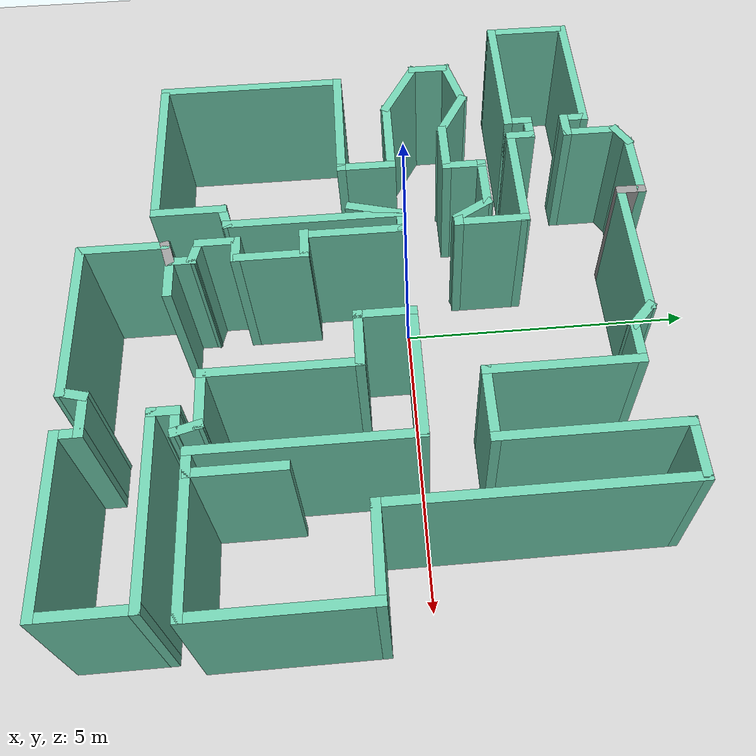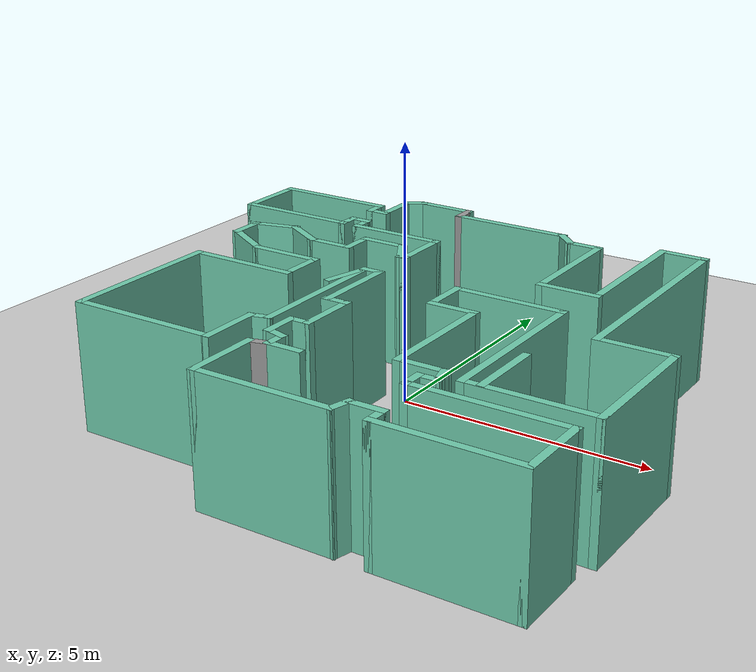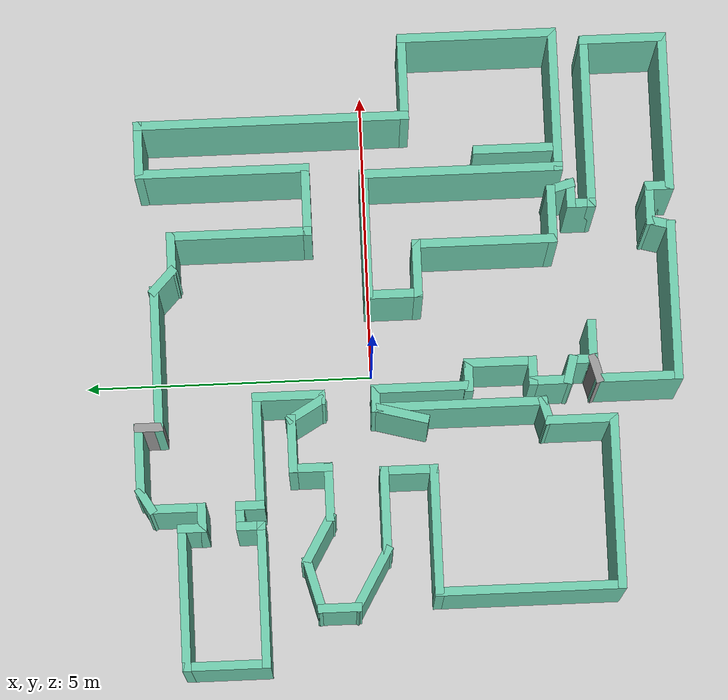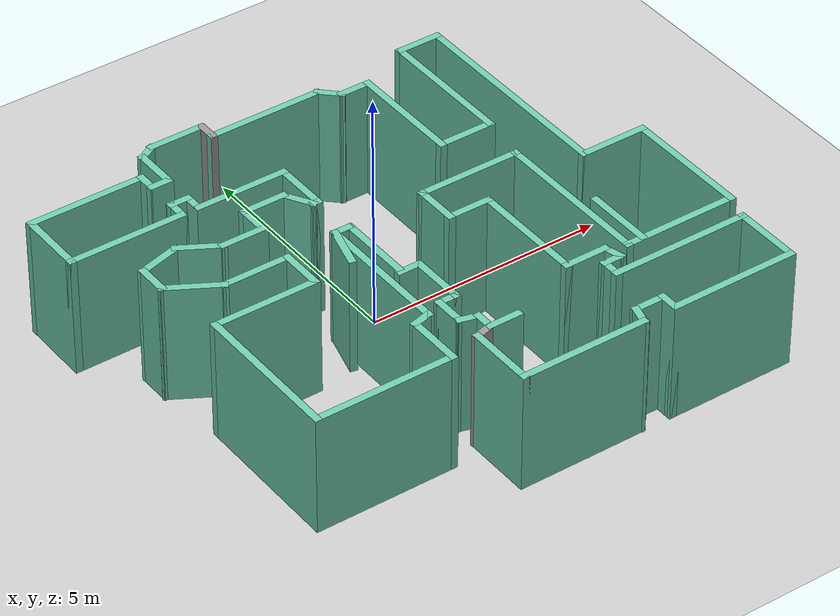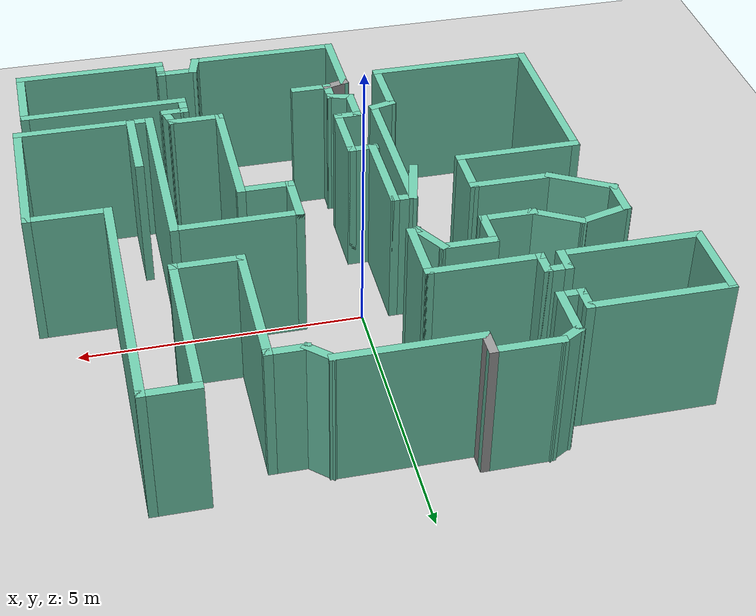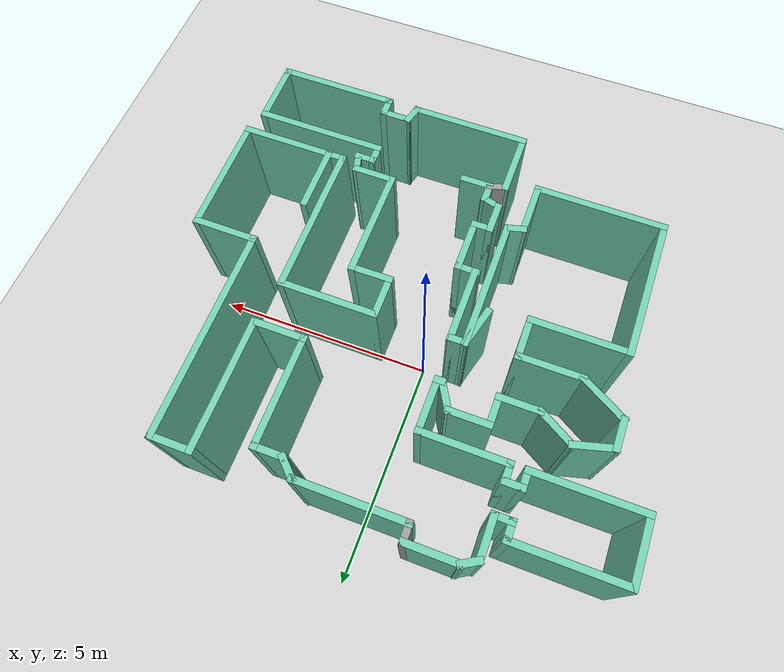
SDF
<sdf version="1.6">
 <world name="default">
  <model name="ground_plane">
   <static>1</static>
   <link name="link">
    <collision name="collision">
     <geometry><plane><normal>0 0 1</normal><size>100 100</size></plane></geometry>
     <surface>
      <contact><collide_bitmask>65535</collide_bitmask></contact>
      <friction><ode><mu>100</mu><mu2>50</mu2></ode></friction>
     </surface>
    </collision>
    <visual name="visual">
     <cast_shadows>0</cast_shadows>
     <geometry><plane><normal>0 0 1</normal><size>100 100</size></plane></geometry>
     <material>
      <script><uri>file://media/materials/scripts/gazebo.material</uri><name>Gazebo/Grey</name></script>
     </material>
    </visual>
   </link>
  </model>
  <model name="map_52">
   <pose>0.195887 -0.58659 0 0 -0 0</pose>
   <link name="Wall_0">
    <collision name="Wall_0_Collision">
     <geometry><box><size>2.5 0.15 2.5</size></box></geometry>
     <pose>0 0 1.25 0 -0 0</pose>
    </collision>
    <visual name="Wall_0_Visual">
     <pose>0 0 1.25 0 -0 0</pose>
     <geometry><box><size>2.5 0.15 2.5</size></box></geometry>
     <material>
      <script><uri>file://media/materials/scripts/gazebo.material</uri><name>Gazebo/Grey</name></script>
      <ambient>0.435294 0.796078 0.67451 1</ambient>
     </material>
     <meta><layer>0</layer></meta>
    </visual>
    <pose>-0.063663 4.26519 0 0 -0 3.14159</pose>
   </link>
   <link name="Wall_1">
    <collision name="Wall_1_Collision">
     <geometry><box><size>0.5 0.15 2.5</size></box></geometry>
     <pose>0 0 1.25 0 -0 0</pose>
    </collision>
    <visual name="Wall_1_Visual">
     <pose>0 0 1.25 0 -0 0</pose>
     <geometry><box><size>0.5 0.15 2.5</size></box></geometry>
     <material>
      <script><uri>file://media/materials/scripts/gazebo.material</uri><name>Gazebo/Grey</name></script>
      <ambient>1 1 1 1</ambient>
     </material>
     <meta><layer>0</layer></meta>
    </visual>
    <pose>-1.23866 4.44019 0 0 -0 1.5708</pose>
   </link>
   <link name="Wall_10">
    <collision name="Wall_10_Collision">
     <geometry><box><size>1.5 0.15 2.5</size></box></geometry>
     <pose>0 0 1.25 0 -0 0</pose>
    </collision>
    <visual name="Wall_10_Visual">
     <pose>0 0 1.25 0 -0 0</pose>
     <geometry><box><size>1.5 0.15 2.5</size></box></geometry>
     <material>
      <script><uri>file://media/materials/scripts/gazebo.material</uri><name>Gazebo/Grey</name></script>
      <ambient>0.435294 0.796078 0.67451 1</ambient>
     </material>
     <meta><layer>0</layer></meta>
    </visual>
    <pose>-5.34177 3.26519 0 0 -0 -1.5708</pose>
   </link>
   <link name="Wall_11">
    <collision name="Wall_11_Collision">
     <geometry><box><size>2.5 0.15 2.5</size></box></geometry>
     <pose>0 0 1.25 0 -0 0</pose>
    </collision>
    <visual name="Wall_11_Visual">
     <pose>0 0 1.25 0 -0 0</pose>
     <geometry><box><size>2.5 0.15 2.5</size></box></geometry>
     <material>
      <script><uri>file://media/materials/scripts/gazebo.material</uri><name>Gazebo/Grey</name></script>
      <ambient>0.435294 0.796078 0.67451 1</ambient>
     </material>
     <meta><layer>0</layer></meta>
    </visual>
    <pose>-4.16677 2.59019 0 0 -0 0</pose>
   </link>
   <link name="Wall_12">
    <collision name="Wall_12_Collision">
     <geometry><box><size>0.5 0.15 2.5</size></box></geometry>
     <pose>0 0 1.25 0 -0 0</pose>
    </collision>
    <visual name="Wall_12_Visual">
     <pose>0 0 1.25 0 -0 0</pose>
     <geometry><box><size>0.5 0.15 2.5</size></box></geometry>
     <material>
      <script><uri>file://media/materials/scripts/gazebo.material</uri><name>Gazebo/Grey</name></script>
      <ambient>0.435294 0.796078 0.67451 1</ambient>
     </material>
     <meta><layer>0</layer></meta>
    </visual>
    <pose>-2.99177 2.76519 0 0 -0 1.5708</pose>
   </link>
   <link name="Wall_13">
    <collision name="Wall_13_Collision">
     <geometry><box><size>0.5 0.15 2.5</size></box></geometry>
     <pose>0 0 1.25 0 -0 0</pose>
    </collision>
    <visual name="Wall_13_Visual">
     <pose>0 0 1.25 0 -0 0</pose>
     <geometry><box><size>0.5 0.15 2.5</size></box></geometry>
     <material>
      <script><uri>file://media/materials/scripts/gazebo.material</uri><name>Gazebo/Grey</name></script>
      <ambient>0.435294 0.796078 0.67451 1</ambient>
     </material>
     <meta><layer>0</layer></meta>
    </visual>
    <pose>-2.81677 2.94019 0 0 -0 0</pose>
   </link>
   <link name="Wall_14">
    <collision name="Wall_14_Collision">
     <geometry><box><size>0.5 0.15 2.5</size></box></geometry>
     <pose>0 0 1.25 0 -0 0</pose>
    </collision>
    <visual name="Wall_14_Visual">
     <pose>0 0 1.25 0 -0 0</pose>
     <geometry><box><size>0.5 0.15 2.5</size></box></geometry>
     <material>
      <script><uri>file://media/materials/scripts/gazebo.material</uri><name>Gazebo/Grey</name></script>
      <ambient>0.435294 0.796078 0.67451 1</ambient>
     </material>
     <meta><layer>0</layer></meta>
    </visual>
    <pose>-2.64177 2.76519 0 0 -0 -1.5708</pose>
   </link>
   <link name="Wall_15">
    <collision name="Wall_15_Collision">
     <geometry><box><size>2 0.15 2.5</size></box></geometry>
     <pose>0 0 1.25 0 -0 0</pose>
    </collision>
    <visual name="Wall_15_Visual">
     <pose>0 0 1.25 0 -0 0</pose>
     <geometry><box><size>2 0.15 2.5</size></box></geometry>
     <material>
      <script><uri>file://media/materials/scripts/gazebo.material</uri><name>Gazebo/Grey</name></script>
      <ambient>0.435294 0.796078 0.67451 1</ambient>
     </material>
     <meta><layer>0</layer></meta>
    </visual>
    <pose>-1.71677 2.59019 0 0 -0 0</pose>
   </link>
   <link name="Wall_16">
    <collision name="Wall_16_Collision">
     <geometry><box><size>1.25 0.15 2.5</size></box></geometry>
     <pose>0 0 1.25 0 -0 0</pose>
    </collision>
    <visual name="Wall_16_Visual">
     <pose>0 0 1.25 0 -0 0</pose>
     <geometry><box><size>1.25 0.15 2.5</size></box></geometry>
     <material>
      <script><uri>file://media/materials/scripts/gazebo.material</uri><name>Gazebo/Grey</name></script>
      <ambient>0.435294 0.796078 0.67451 1</ambient>
     </material>
     <meta><layer>0</layer></meta>
    </visual>
    <pose>-0.791772 2.04019 0 0 -0 -1.5708</pose>
   </link>
   <link name="Wall_17">
    <collision name="Wall_17_Collision">
     <geometry><box><size>0.25 0.15 2.5</size></box></geometry>
     <pose>0 0 1.25 0 -0 0</pose>
    </collision>
    <visual name="Wall_17_Visual">
     <pose>0 0 1.25 0 -0 0</pose>
     <geometry><box><size>0.25 0.15 2.5</size></box></geometry>
     <material>
      <script><uri>file://media/materials/scripts/gazebo.material</uri><name>Gazebo/Grey</name></script>
      <ambient>0.435294 0.796078 0.67451 1</ambient>
     </material>
     <meta><layer>0</layer></meta>
    </visual>
    <pose>-0.841772 1.49019 0 0 -0 3.14159</pose>
   </link>
   <link name="Wall_18">
    <collision name="Wall_18_Collision">
     <geometry><box><size>0.75 0.15 2.5</size></box></geometry>
     <pose>0 0 1.25 0 -0 0</pose>
    </collision>
    <visual name="Wall_18_Visual">
     <pose>0 0 1.25 0 -0 0</pose>
     <geometry><box><size>0.75 0.15 2.5</size></box></geometry>
     <material>
      <script><uri>file://media/materials/scripts/gazebo.material</uri><name>Gazebo/Grey</name></script>
      <ambient>0.435294 0.796078 0.67451 1</ambient>
     </material>
     <meta><layer>0</layer></meta>
    </visual>
    <pose>-1.04177 1.74999 0 0 -0 2.0944</pose>
   </link>
   <link name="Wall_19">
    <collision name="Wall_19_Collision">
     <geometry><box><size>1 0.15 2.5</size></box></geometry>
     <pose>0 0 1.25 0 -0 0</pose>
    </collision>
    <visual name="Wall_19_Visual">
     <pose>0 0 1.25 0 -0 0</pose>
     <geometry><box><size>1 0.15 2.5</size></box></geometry>
     <material>
      <script><uri>file://media/materials/scripts/gazebo.material</uri><name>Gazebo/Grey</name></script>
      <ambient>0.435294 0.796078 0.67451 1</ambient>
     </material>
     <meta><layer>0</layer></meta>
    </visual>
    <pose>-1.61677 2.0098 0 0 -0 3.14159</pose>
   </link>
   <link name="Wall_2">
    <collision name="Wall_2_Collision">
     <geometry><box><size>1.25 0.15 2.5</size></box></geometry>
     <pose>0 0 1.25 0 -0 0</pose>
    </collision>
    <visual name="Wall_2_Visual">
     <pose>0 0 1.25 0 -0 0</pose>
     <geometry><box><size>1.25 0.15 2.5</size></box></geometry>
     <material>
      <script><uri>file://media/materials/scripts/gazebo.material</uri><name>Gazebo/Grey</name></script>
      <ambient>0.435294 0.796078 0.67451 1</ambient>
     </material>
     <meta><layer>0</layer></meta>
    </visual>
    <pose>-1.78866 4.61519 0 0 -0 3.14159</pose>
   </link>
   <link name="Wall_20">
    <collision name="Wall_20_Collision">
     <geometry><box><size>0.75 0.15 2.5</size></box></geometry>
     <pose>0 0 1.25 0 -0 0</pose>
    </collision>
    <visual name="Wall_20_Visual">
     <pose>0 0 1.25 0 -0 0</pose>
     <geometry><box><size>0.75 0.15 2.5</size></box></geometry>
     <material>
      <script><uri>file://media/materials/scripts/gazebo.material</uri><name>Gazebo/Grey</name></script>
      <ambient>0.435294 0.796078 0.67451 1</ambient>
     </material>
     <meta><layer>0</layer></meta>
    </visual>
    <pose>-2.04177 1.7098 0 0 -0 -1.5708</pose>
   </link>
   <link name="Wall_21">
    <collision name="Wall_21_Collision">
     <geometry><box><size>1 0.15 2.5</size></box></geometry>
     <pose>0 0 1.25 0 -0 0</pose>
    </collision>
    <visual name="Wall_21_Visual">
     <pose>0 0 1.25 0 -0 0</pose>
     <geometry><box><size>1 0.15 2.5</size></box></geometry>
     <material>
      <script><uri>file://media/materials/scripts/gazebo.material</uri><name>Gazebo/Grey</name></script>
      <ambient>0.435294 0.796078 0.67451 1</ambient>
     </material>
     <meta><layer>0</layer></meta>
    </visual>
    <pose>-2.46677 1.4098 0 0 -0 3.14159</pose>
   </link>
   <link name="Wall_22">
    <collision name="Wall_22_Collision">
     <geometry><box><size>1 0.15 2.5</size></box></geometry>
     <pose>0 0 1.25 0 -0 0</pose>
    </collision>
    <visual name="Wall_22_Visual">
     <pose>0 0 1.25 0 -0 0</pose>
     <geometry><box><size>1 0.15 2.5</size></box></geometry>
     <material>
      <script><uri>file://media/materials/scripts/gazebo.material</uri><name>Gazebo/Grey</name></script>
      <ambient>0.435294 0.796078 0.67451 1</ambient>
     </material>
     <meta><layer>0</layer></meta>
    </visual>
    <pose>-3.25983 1.6223 0 0 -0 2.61799</pose>
   </link>
   <link name="Wall_23">
    <collision name="Wall_23_Collision">
     <geometry><box><size>1 0.15 2.5</size></box></geometry>
     <pose>0 0 1.25 0 -0 0</pose>
    </collision>
    <visual name="Wall_23_Visual">
     <pose>0 0 1.25 0 -0 0</pose>
     <geometry><box><size>1 0.15 2.5</size></box></geometry>
     <material>
      <script><uri>file://media/materials/scripts/gazebo.material</uri><name>Gazebo/Grey</name></script>
      <ambient>0.435294 0.796078 0.67451 1</ambient>
     </material>
     <meta><layer>0</layer></meta>
    </visual>
    <pose>-4.03841 1.7248 0 0 -0 -2.87979</pose>
   </link>
   <link name="Wall_24">
    <collision name="Wall_24_Collision">
     <geometry><box><size>0.75 0.15 2.5</size></box></geometry>
     <pose>0 0 1.25 0 -0 0</pose>
    </collision>
    <visual name="Wall_24_Visual">
     <pose>0 0 1.25 0 -0 0</pose>
     <geometry><box><size>0.75 0.15 2.5</size></box></geometry>
     <material>
      <script><uri>file://media/materials/scripts/gazebo.material</uri><name>Gazebo/Grey</name></script>
      <ambient>0.435294 0.796078 0.67451 1</ambient>
     </material>
     <meta><layer>0</layer></meta>
    </visual>
    <pose>-4.44893 1.31481 0 0 -0 -1.5708</pose>
   </link>
   <link name="Wall_25">
    <collision name="Wall_25_Collision">
     <geometry><box><size>1.25 0.15 2.5</size></box></geometry>
     <pose>0 0 1.25 0 -0 0</pose>
    </collision>
    <visual name="Wall_25_Visual">
     <pose>0 0 1.25 0 -0 0</pose>
     <geometry><box><size>1.25 0.15 2.5</size></box></geometry>
     <material>
      <script><uri>file://media/materials/scripts/gazebo.material</uri><name>Gazebo/Grey</name></script>
      <ambient>0.435294 0.796078 0.67451 1</ambient>
     </material>
     <meta><layer>0</layer></meta>
    </visual>
    <pose>-3.97262 0.739805 0 0 -0 -0.523599</pose>
   </link>
   <link name="Wall_26">
    <collision name="Wall_26_Collision">
     <geometry><box><size>1.5 0.15 2.5</size></box></geometry>
     <pose>0 0 1.25 0 -0 0</pose>
    </collision>
    <visual name="Wall_26_Visual">
     <pose>0 0 1.25 0 -0 0</pose>
     <geometry><box><size>1.5 0.15 2.5</size></box></geometry>
     <material>
      <script><uri>file://media/materials/scripts/gazebo.material</uri><name>Gazebo/Grey</name></script>
      <ambient>0.435294 0.796078 0.67451 1</ambient>
     </material>
     <meta><layer>0</layer></meta>
    </visual>
    <pose>-2.8213 0.464805 0 0 -0 0</pose>
   </link>
   <link name="Wall_29">
    <collision name="Wall_29_Collision">
     <geometry><box><size>1 0.15 2.5</size></box></geometry>
     <pose>0 0 1.25 0 -0 0</pose>
    </collision>
    <visual name="Wall_29_Visual">
     <pose>0 0 1.25 0 -0 0</pose>
     <geometry><box><size>1 0.15 2.5</size></box></geometry>
     <material>
      <script><uri>file://media/materials/scripts/gazebo.material</uri><name>Gazebo/Grey</name></script>
      <ambient>0.435294 0.796078 0.67451 1</ambient>
     </material>
     <meta><layer>0</layer></meta>
    </visual>
    <pose>-2.1463 0.039805 0 0 -0 -1.5708</pose>
   </link>
   <link name="Wall_3">
    <collision name="Wall_3_Collision">
     <geometry><box><size>0.5 0.15 2.5</size></box></geometry>
     <pose>0 0 1.25 0 -0 0</pose>
    </collision>
    <visual name="Wall_3_Visual">
     <pose>0 0 1.25 0 -0 0</pose>
     <geometry><box><size>0.5 0.15 2.5</size></box></geometry>
     <material>
      <script><uri>file://media/materials/scripts/gazebo.material</uri><name>Gazebo/Grey</name></script>
      <ambient>0.435294 0.796078 0.67451 1</ambient>
     </material>
     <meta><layer>0</layer></meta>
    </visual>
    <pose>-2.49022 4.52769 0 0 -0 -2.61799</pose>
   </link>
   <link name="Wall_30">
    <collision name="Wall_30_Collision">
     <geometry><box><size>2.25 0.15 2.5</size></box></geometry>
     <pose>0 0 1.25 0 -0 0</pose>
    </collision>
    <visual name="Wall_30_Visual">
     <pose>0 0 1.25 0 -0 0</pose>
     <geometry><box><size>2.25 0.15 2.5</size></box></geometry>
     <material>
      <script><uri>file://media/materials/scripts/gazebo.material</uri><name>Gazebo/Grey</name></script>
      <ambient>0.435294 0.796078 0.67451 1</ambient>
     </material>
     <meta><layer>0</layer></meta>
    </visual>
    <pose>-3.1963 -0.385195 0 0 -0 3.14159</pose>
   </link>
   <link name="Wall_31">
    <collision name="Wall_31_Collision">
     <geometry><box><size>3.25 0.15 2.5</size></box></geometry>
     <pose>0 0 1.25 0 -0 0</pose>
    </collision>
    <visual name="Wall_31_Visual">
     <pose>0 0 1.25 0 -0 0</pose>
     <geometry><box><size>3.25 0.15 2.5</size></box></geometry>
     <material>
      <script><uri>file://media/materials/scripts/gazebo.material</uri><name>Gazebo/Grey</name></script>
      <ambient>0.435294 0.796078 0.67451 1</ambient>
     </material>
     <meta><layer>0</layer></meta>
    </visual>
    <pose>-4.2463 -1.93519 0 0 -0 -1.5708</pose>
   </link>
   <link name="Wall_32">
    <collision name="Wall_32_Collision">
     <geometry><box><size>3 0.15 2.5</size></box></geometry>
     <pose>0 0 1.25 0 -0 0</pose>
    </collision>
    <visual name="Wall_32_Visual">
     <pose>0 0 1.25 0 -0 0</pose>
     <geometry><box><size>3 0.15 2.5</size></box></geometry>
     <material>
      <script><uri>file://media/materials/scripts/gazebo.material</uri><name>Gazebo/Grey</name></script>
      <ambient>0.435294 0.796078 0.67451 1</ambient>
     </material>
     <meta><layer>0</layer></meta>
    </visual>
    <pose>-2.8213 -3.4852 0 0 -0 0</pose>
   </link>
   <link name="Wall_33">
    <collision name="Wall_33_Collision">
     <geometry><box><size>1.25 0.15 2.5</size></box></geometry>
     <pose>0 0 1.25 0 -0 0</pose>
    </collision>
    <visual name="Wall_33_Visual">
     <pose>0 0 1.25 0 -0 0</pose>
     <geometry><box><size>1.25 0.15 2.5</size></box></geometry>
     <material>
      <script><uri>file://media/materials/scripts/gazebo.material</uri><name>Gazebo/Grey</name></script>
      <ambient>0.435294 0.796078 0.67451 1</ambient>
     </material>
     <meta><layer>0</layer></meta>
    </visual>
    <pose>-1.3963 -2.9352 0 0 -0 1.5708</pose>
   </link>
   <link name="Wall_34">
    <collision name="Wall_34_Collision">
     <geometry><box><size>0.5 0.15 2.5</size></box></geometry>
     <pose>0 0 1.25 0 -0 0</pose>
    </collision>
    <visual name="Wall_34_Visual">
     <pose>0 0 1.25 0 -0 0</pose>
     <geometry><box><size>0.5 0.15 2.5</size></box></geometry>
     <material>
      <script><uri>file://media/materials/scripts/gazebo.material</uri><name>Gazebo/Grey</name></script>
      <ambient>0.435294 0.796078 0.67451 1</ambient>
     </material>
     <meta><layer>0</layer></meta>
    </visual>
    <pose>-1.22727 -2.3399 0 0 -0 0.261799</pose>
   </link>
   <link name="Wall_35">
    <collision name="Wall_35_Collision">
     <geometry><box><size>3 0.15 2.5</size></box></geometry>
     <pose>0 0 1.25 0 -0 0</pose>
    </collision>
    <visual name="Wall_35_Visual">
     <pose>0 0 1.25 0 -0 0</pose>
     <geometry><box><size>3 0.15 2.5</size></box></geometry>
     <material>
      <script><uri>file://media/materials/scripts/gazebo.material</uri><name>Gazebo/Grey</name></script>
      <ambient>0.435294 0.796078 0.67451 1</ambient>
     </material>
     <meta><layer>0</layer></meta>
    </visual>
    <pose>-1.05823 -0.869609 0 0 -0 1.5708</pose>
   </link>
   <link name="Wall_36">
    <collision name="Wall_36_Collision">
     <geometry><box><size>0.43882 0.15 2.5</size></box></geometry>
     <pose>0 0 1.25 0 -0 0</pose>
    </collision>
    <visual name="Wall_36_Visual">
     <pose>0 0 1.25 0 -0 0</pose>
     <geometry><box><size>0.43882 0.15 2.5</size></box></geometry>
     <material>
      <script><uri>file://media/materials/scripts/gazebo.material</uri><name>Gazebo/Grey</name></script>
      <ambient>0.435294 0.796078 0.67451 1</ambient>
     </material>
     <meta><layer>0</layer></meta>
    </visual>
    <pose>-0.913819 0.555391 0 0 -0 0</pose>
   </link>
   <link name="Wall_4">
    <collision name="Wall_4_Collision">
     <geometry><box><size>1 0.15 2.5</size></box></geometry>
     <pose>0 0 1.25 0 -0 0</pose>
    </collision>
    <visual name="Wall_4_Visual">
     <pose>0 0 1.25 0 -0 0</pose>
     <geometry><box><size>1 0.15 2.5</size></box></geometry>
     <material>
      <script><uri>file://media/materials/scripts/gazebo.material</uri><name>Gazebo/Grey</name></script>
      <ambient>0.435294 0.796078 0.67451 1</ambient>
     </material>
     <meta><layer>0</layer></meta>
    </visual>
    <pose>-2.64177 4.01519 0 0 -0 -1.5708</pose>
   </link>
   <link name="Wall_41">
    <collision name="Wall_41_Collision">
     <geometry><box><size>1.75 0.15 2.5</size></box></geometry>
     <pose>0 0 1.25 0 -0 0</pose>
    </collision>
    <visual name="Wall_41_Visual">
     <pose>0 0 1.25 0 -0 0</pose>
     <geometry><box><size>1.75 0.15 2.5</size></box></geometry>
     <material>
      <script><uri>file://media/materials/scripts/gazebo.material</uri><name>Gazebo/Grey</name></script>
      <ambient>0.435294 0.796078 0.67451 1</ambient>
     </material>
     <meta><layer>0</layer></meta>
    </visual>
    <pose>-0.738819 -0.244609 0 0 -0 -1.5708</pose>
   </link>
   <link name="Wall_42">
    <collision name="Wall_42_Collision">
     <geometry><box><size>0.56118 0.15 2.5</size></box></geometry>
     <pose>0 0 1.25 0 -0 0</pose>
    </collision>
    <visual name="Wall_42_Visual">
     <pose>0 0 1.25 0 -0 0</pose>
     <geometry><box><size>0.56118 0.15 2.5</size></box></geometry>
     <material>
      <script><uri>file://media/materials/scripts/gazebo.material</uri><name>Gazebo/Grey</name></script>
      <ambient>0.435294 0.796078 0.67451 1</ambient>
     </material>
     <meta><layer>0</layer></meta>
    </visual>
    <pose>-0.563819 -1.04461 0 0 -0 0</pose>
   </link>
   <link name="Wall_43">
    <collision name="Wall_43_Collision">
     <geometry><box><size>1.25 0.15 2.5</size></box></geometry>
     <pose>0 0 1.25 0 -0 0</pose>
    </collision>
    <visual name="Wall_43_Visual">
     <pose>0 0 1.25 0 -0 0</pose>
     <geometry><box><size>1.25 0.15 2.5</size></box></geometry>
     <material>
      <script><uri>file://media/materials/scripts/gazebo.material</uri><name>Gazebo/Grey</name></script>
      <ambient>0.435294 0.796078 0.67451 1</ambient>
     </material>
     <meta><layer>0</layer></meta>
    </visual>
    <pose>-0.358229 -1.59461 0 0 -0 -1.5708</pose>
   </link>
   <link name="Wall_44">
    <collision name="Wall_44_Collision">
     <geometry><box><size>0.5 0.15 2.5</size></box></geometry>
     <pose>0 0 1.25 0 -0 0</pose>
    </collision>
    <visual name="Wall_44_Visual">
     <pose>0 0 1.25 0 -0 0</pose>
     <geometry><box><size>0.5 0.15 2.5</size></box></geometry>
     <material>
      <script><uri>file://media/materials/scripts/gazebo.material</uri><name>Gazebo/Grey</name></script>
      <ambient>0.435294 0.796078 0.67451 1</ambient>
     </material>
     <meta><layer>0</layer></meta>
    </visual>
    <pose>-0.533229 -2.14461 0 0 -0 3.14159</pose>
   </link>
   <link name="Wall_45">
    <collision name="Wall_45_Collision">
     <geometry><box><size>0.75 0.15 2.5</size></box></geometry>
     <pose>0 0 1.25 0 -0 0</pose>
    </collision>
    <visual name="Wall_45_Visual">
     <pose>0 0 1.25 0 -0 0</pose>
     <geometry><box><size>0.75 0.15 2.5</size></box></geometry>
     <material>
      <script><uri>file://media/materials/scripts/gazebo.material</uri><name>Gazebo/Grey</name></script>
      <ambient>0.435294 0.796078 0.67451 1</ambient>
     </material>
     <meta><layer>0</layer></meta>
    </visual>
    <pose>-0.708229 -2.44461 0 0 -0 -1.5708</pose>
   </link>
   <link name="Wall_46">
    <collision name="Wall_46_Collision">
     <geometry><box><size>0.5 0.15 2.5</size></box></geometry>
     <pose>0 0 1.25 0 -0 0</pose>
    </collision>
    <visual name="Wall_46_Visual">
     <pose>0 0 1.25 0 -0 0</pose>
     <geometry><box><size>0.5 0.15 2.5</size></box></geometry>
     <material>
      <script><uri>file://media/materials/scripts/gazebo.material</uri><name>Gazebo/Grey</name></script>
      <ambient>0.435294 0.796078 0.67451 1</ambient>
     </material>
     <meta><layer>0</layer></meta>
    </visual>
    <pose>-0.539191 -2.7899 0 0 -0 -0.261799</pose>
   </link>
   <link name="Wall_47">
    <collision name="Wall_47_Collision">
     <geometry><box><size>0.5 0.15 2.5</size></box></geometry>
     <pose>0 0 1.25 0 -0 0</pose>
    </collision>
    <visual name="Wall_47_Visual">
     <pose>0 0 1.25 0 -0 0</pose>
     <geometry><box><size>0.5 0.15 2.5</size></box></geometry>
     <material>
      <script><uri>file://media/materials/scripts/gazebo.material</uri><name>Gazebo/Grey</name></script>
      <ambient>0.435294 0.796078 0.67451 1</ambient>
     </material>
     <meta><layer>0</layer></meta>
    </visual>
    <pose>-0.370155 -3.01019 0 0 -0 -1.5708</pose>
   </link>
   <link name="Wall_48">
    <collision name="Wall_48_Collision">
     <geometry><box><size>0.5 0.15 2.5</size></box></geometry>
     <pose>0 0 1.25 0 -0 0</pose>
    </collision>
    <visual name="Wall_48_Visual">
     <pose>0 0 1.25 0 -0 0</pose>
     <geometry><box><size>0.5 0.15 2.5</size></box></geometry>
     <material>
      <script><uri>file://media/materials/scripts/gazebo.material</uri><name>Gazebo/Grey</name></script>
      <ambient>1 1 1 1</ambient>
     </material>
     <meta><layer>0</layer></meta>
    </visual>
    <pose>-0.539191 -3.23049 0 0 -0 -2.87979</pose>
   </link>
   <link name="Wall_49">
    <collision name="Wall_49_Collision">
     <geometry><box><size>1.5 0.15 2.5</size></box></geometry>
     <pose>0 0 1.25 0 -0 0</pose>
    </collision>
    <visual name="Wall_49_Visual">
     <pose>0 0 1.25 0 -0 0</pose>
     <geometry><box><size>1.5 0.15 2.5</size></box></geometry>
     <material>
      <script><uri>file://media/materials/scripts/gazebo.material</uri><name>Gazebo/Grey</name></script>
      <ambient>0.435294 0.796078 0.67451 1</ambient>
     </material>
     <meta><layer>0</layer></meta>
    </visual>
    <pose>-0.708229 -3.95078 0 0 -0 -1.5708</pose>
   </link>
   <link name="Wall_50">
    <collision name="Wall_50_Collision">
     <geometry><box><size>2.75 0.15 2.5</size></box></geometry>
     <pose>0 0 1.25 0 -0 0</pose>
    </collision>
    <visual name="Wall_50_Visual">
     <pose>0 0 1.25 0 -0 0</pose>
     <geometry><box><size>2.75 0.15 2.5</size></box></geometry>
     <material>
      <script><uri>file://media/materials/scripts/gazebo.material</uri><name>Gazebo/Grey</name></script>
      <ambient>0.435294 0.796078 0.67451 1</ambient>
     </material>
     <meta><layer>0</layer></meta>
    </visual>
    <pose>0.591771 -4.62578 0 0 -0 0</pose>
   </link>
   <link name="Wall_55">
    <collision name="Wall_55_Collision">
     <geometry><box><size>0.5 0.15 2.5</size></box></geometry>
     <pose>0 0 1.25 0 -0 0</pose>
    </collision>
    <visual name="Wall_55_Visual">
     <pose>0 0 1.25 0 -0 0</pose>
     <geometry><box><size>0.5 0.15 2.5</size></box></geometry>
     <material>
      <script><uri>file://media/materials/scripts/gazebo.material</uri><name>Gazebo/Grey</name></script>
      <ambient>0.435294 0.796078 0.67451 1</ambient>
     </material>
     <meta><layer>0</layer></meta>
    </visual>
    <pose>1.93707 -4.45674 0 0 -0 1.309</pose>
   </link>
   <link name="Wall_56">
    <collision name="Wall_56_Collision">
     <geometry><box><size>0.75 0.15 2.5</size></box></geometry>
     <pose>0 0 1.25 0 -0 0</pose>
    </collision>
    <visual name="Wall_56_Visual">
     <pose>0 0 1.25 0 -0 0</pose>
     <geometry><box><size>0.75 0.15 2.5</size></box></geometry>
     <material>
      <script><uri>file://media/materials/scripts/gazebo.material</uri><name>Gazebo/Grey</name></script>
      <ambient>0.435294 0.796078 0.67451 1</ambient>
     </material>
     <meta><layer>0</layer></meta>
    </visual>
    <pose>2.28236 -4.28771 0 0 -0 0</pose>
   </link>
   <link name="Wall_57">
    <collision name="Wall_57_Collision">
     <geometry><box><size>0.5 0.15 2.5</size></box></geometry>
     <pose>0 0 1.25 0 -0 0</pose>
    </collision>
    <visual name="Wall_57_Visual">
     <pose>0 0 1.25 0 -0 0</pose>
     <geometry><box><size>0.5 0.15 2.5</size></box></geometry>
     <material>
      <script><uri>file://media/materials/scripts/gazebo.material</uri><name>Gazebo/Grey</name></script>
      <ambient>0.435294 0.796078 0.67451 1</ambient>
     </material>
     <meta><layer>0</layer></meta>
    </visual>
    <pose>2.58236 -4.46271 0 0 -0 -1.5708</pose>
   </link>
   <link name="Wall_58">
    <collision name="Wall_58_Collision">
     <geometry><box><size>2.75 0.15 2.5</size></box></geometry>
     <pose>0 0 1.25 0 -0 0</pose>
    </collision>
    <visual name="Wall_58_Visual">
     <pose>0 0 1.25 0 -0 0</pose>
     <geometry><box><size>2.75 0.15 2.5</size></box></geometry>
     <material>
      <script><uri>file://media/materials/scripts/gazebo.material</uri><name>Gazebo/Grey</name></script>
      <ambient>0.435294 0.796078 0.67451 1</ambient>
     </material>
     <meta><layer>0</layer></meta>
    </visual>
    <pose>3.88236 -4.63771 0 0 -0 0</pose>
   </link>
   <link name="Wall_59">
    <collision name="Wall_59_Collision">
     <geometry><box><size>1.5 0.15 2.5</size></box></geometry>
     <pose>0 0 1.25 0 -0 0</pose>
    </collision>
    <visual name="Wall_59_Visual">
     <pose>0 0 1.25 0 -0 0</pose>
     <geometry><box><size>1.5 0.15 2.5</size></box></geometry>
     <material>
      <script><uri>file://media/materials/scripts/gazebo.material</uri><name>Gazebo/Grey</name></script>
      <ambient>0.435294 0.796078 0.67451 1</ambient>
     </material>
     <meta><layer>0</layer></meta>
    </visual>
    <pose>5.18236 -3.96271 0 0 -0 1.5708</pose>
   </link>
   <link name="Wall_60">
    <collision name="Wall_60_Collision">
     <geometry><box><size>3 0.15 2.5</size></box></geometry>
     <pose>0 0 1.25 0 -0 0</pose>
    </collision>
    <visual name="Wall_60_Visual">
     <pose>0 0 1.25 0 -0 0</pose>
     <geometry><box><size>3 0.15 2.5</size></box></geometry>
     <material>
      <script><uri>file://media/materials/scripts/gazebo.material</uri><name>Gazebo/Grey</name></script>
      <ambient>0.435294 0.796078 0.67451 1</ambient>
     </material>
     <meta><layer>0</layer></meta>
    </visual>
    <pose>3.75736 -3.28771 0 0 -0 3.14159</pose>
   </link>
   <link name="Wall_61">
    <collision name="Wall_61_Collision">
     <geometry><box><size>0.5 0.15 2.5</size></box></geometry>
     <pose>0 0 1.25 0 -0 0</pose>
    </collision>
    <visual name="Wall_61_Visual">
     <pose>0 0 1.25 0 -0 0</pose>
     <geometry><box><size>0.5 0.15 2.5</size></box></geometry>
     <material>
      <script><uri>file://media/materials/scripts/gazebo.material</uri><name>Gazebo/Grey</name></script>
      <ambient>0.435294 0.796078 0.67451 1</ambient>
     </material>
     <meta><layer>0</layer></meta>
    </visual>
    <pose>2.33236 -3.11271 0 0 -0 1.5708</pose>
   </link>
   <link name="Wall_62">
    <collision name="Wall_62_Collision">
     <geometry><box><size>0.5 0.15 2.5</size></box></geometry>
     <pose>0 0 1.25 0 -0 0</pose>
    </collision>
    <visual name="Wall_62_Visual">
     <pose>0 0 1.25 0 -0 0</pose>
     <geometry><box><size>0.5 0.15 2.5</size></box></geometry>
     <material>
      <script><uri>file://media/materials/scripts/gazebo.material</uri><name>Gazebo/Grey</name></script>
      <ambient>0.435294 0.796078 0.67451 1</ambient>
     </material>
     <meta><layer>0</layer></meta>
    </visual>
    <pose>2.50736 -2.93771 0 0 -0 0</pose>
   </link>
   <link name="Wall_63">
    <collision name="Wall_63_Collision">
     <geometry><box><size>0.5 0.15 2.5</size></box></geometry>
     <pose>0 0 1.25 0 -0 0</pose>
    </collision>
    <visual name="Wall_63_Visual">
     <pose>0 0 1.25 0 -0 0</pose>
     <geometry><box><size>0.5 0.15 2.5</size></box></geometry>
     <material>
      <script><uri>file://media/materials/scripts/gazebo.material</uri><name>Gazebo/Grey</name></script>
      <ambient>0.435294 0.796078 0.67451 1</ambient>
     </material>
     <meta><layer>0</layer></meta>
    </visual>
    <pose>2.63707 -2.76867 0 0 -0 1.8326</pose>
   </link>
   <link name="Wall_64">
    <collision name="Wall_64_Collision">
     <geometry><box><size>1 0.15 2.5</size></box></geometry>
     <pose>0 0 1.25 0 -0 0</pose>
    </collision>
    <visual name="Wall_64_Visual">
     <pose>0 0 1.25 0 -0 0</pose>
     <geometry><box><size>1 0.15 2.5</size></box></geometry>
     <material>
      <script><uri>file://media/materials/scripts/gazebo.material</uri><name>Gazebo/Grey</name></script>
      <ambient>0.435294 0.796078 0.67451 1</ambient>
     </material>
     <meta><layer>0</layer></meta>
    </visual>
    <pose>2.16677 -2.59963 0 0 -0 3.14159</pose>
   </link>
   <link name="Wall_65">
    <collision name="Wall_65_Collision">
     <geometry><box><size>2.5 0.15 2.5</size></box></geometry>
     <pose>0 0 1.25 0 -0 0</pose>
    </collision>
    <visual name="Wall_65_Visual">
     <pose>0 0 1.25 0 -0 0</pose>
     <geometry><box><size>2.5 0.15 2.5</size></box></geometry>
     <material>
      <script><uri>file://media/materials/scripts/gazebo.material</uri><name>Gazebo/Grey</name></script>
      <ambient>0.435294 0.796078 0.67451 1</ambient>
     </material>
     <meta><layer>0</layer></meta>
    </visual>
    <pose>1.74177 -1.42463 0 0 -0 1.5708</pose>
   </link>
   <link name="Wall_66">
    <collision name="Wall_66_Collision">
     <geometry><box><size>1 0.15 2.5</size></box></geometry>
     <pose>0 0 1.25 0 -0 0</pose>
    </collision>
    <visual name="Wall_66_Visual">
     <pose>0 0 1.25 0 -0 0</pose>
     <geometry><box><size>1 0.15 2.5</size></box></geometry>
     <material>
      <script><uri>file://media/materials/scripts/gazebo.material</uri><name>Gazebo/Grey</name></script>
      <ambient>0.435294 0.796078 0.67451 1</ambient>
     </material>
     <meta><layer>0</layer></meta>
    </visual>
    <pose>1.31677 -0.249634 0 0 -0 3.14159</pose>
   </link>
   <link name="Wall_67">
    <collision name="Wall_67_Collision">
     <geometry><box><size>1 0.15 2.5</size></box></geometry>
     <pose>0 0 1.25 0 -0 0</pose>
    </collision>
    <visual name="Wall_67_Visual">
     <pose>0 0 1.25 0 -0 0</pose>
     <geometry><box><size>1 0.15 2.5</size></box></geometry>
     <material>
      <script><uri>file://media/materials/scripts/gazebo.material</uri><name>Gazebo/Grey</name></script>
      <ambient>0.435294 0.796078 0.67451 1</ambient>
     </material>
     <meta><layer>0</layer></meta>
    </visual>
    <pose>0.891771 0.175366 0 0 -0 1.5708</pose>
   </link>
   <link name="Wall_68">
    <collision name="Wall_68_Collision">
     <geometry><box><size>2.25 0.15 2.5</size></box></geometry>
     <pose>0 0 1.25 0 -0 0</pose>
    </collision>
    <visual name="Wall_68_Visual">
     <pose>0 0 1.25 0 -0 0</pose>
     <geometry><box><size>2.25 0.15 2.5</size></box></geometry>
     <material>
      <script><uri>file://media/materials/scripts/gazebo.material</uri><name>Gazebo/Grey</name></script>
      <ambient>0.435294 0.796078 0.67451 1</ambient>
     </material>
     <meta><layer>0</layer></meta>
    </visual>
    <pose>1.94177 0.600366 0 0 -0 0</pose>
   </link>
   <link name="Wall_69">
    <collision name="Wall_69_Collision">
     <geometry><box><size>3.5 0.15 2.5</size></box></geometry>
     <pose>0 0 1.25 0 -0 0</pose>
    </collision>
    <visual name="Wall_69_Visual">
     <pose>0 0 1.25 0 -0 0</pose>
     <geometry><box><size>3.5 0.15 2.5</size></box></geometry>
     <material>
      <script><uri>file://media/materials/scripts/gazebo.material</uri><name>Gazebo/Grey</name></script>
      <ambient>0.435294 0.796078 0.67451 1</ambient>
     </material>
     <meta><layer>0</layer></meta>
    </visual>
    <pose>2.99177 -1.07463 0 0 -0 -1.5708</pose>
   </link>
   <link name="Wall_7">
    <collision name="Wall_7_Collision">
     <geometry><box><size>0.5 0.15 2.5</size></box></geometry>
     <pose>0 0 1.25 0 -0 0</pose>
    </collision>
    <visual name="Wall_7_Visual">
     <pose>0 0 1.25 0 -0 0</pose>
     <geometry><box><size>0.5 0.15 2.5</size></box></geometry>
     <material>
      <script><uri>file://media/materials/scripts/gazebo.material</uri><name>Gazebo/Grey</name></script>
      <ambient>0.435294 0.796078 0.67451 1</ambient>
     </material>
     <meta><layer>0</layer></meta>
    </visual>
    <pose>-2.81677 3.59019 0 0 -0 3.14159</pose>
   </link>
   <link name="Wall_70">
    <collision name="Wall_70_Collision">
     <geometry><box><size>2.5 0.15 2.5</size></box></geometry>
     <pose>0 0 1.25 0 -0 0</pose>
    </collision>
    <visual name="Wall_70_Visual">
     <pose>0 0 1.25 0 -0 0</pose>
     <geometry><box><size>2.5 0.15 2.5</size></box></geometry>
     <material>
      <script><uri>file://media/materials/scripts/gazebo.material</uri><name>Gazebo/Grey</name></script>
      <ambient>0.435294 0.796078 0.67451 1</ambient>
     </material>
     <meta><layer>0</layer></meta>
    </visual>
    <pose>4.16677 -2.74963 0 0 -0 0</pose>
   </link>
   <link name="Wall_71">
    <collision name="Wall_71_Collision">
     <geometry><box><size>2.75 0.15 2.5</size></box></geometry>
     <pose>0 0 1.25 0 -0 0</pose>
    </collision>
    <visual name="Wall_71_Visual">
     <pose>0 0 1.25 0 -0 0</pose>
     <geometry><box><size>2.75 0.15 2.5</size></box></geometry>
     <material>
      <script><uri>file://media/materials/scripts/gazebo.material</uri><name>Gazebo/Grey</name></script>
      <ambient>0.435294 0.796078 0.67451 1</ambient>
     </material>
     <meta><layer>0</layer></meta>
    </visual>
    <pose>5.34177 -1.44963 0 0 -0 1.5708</pose>
   </link>
   <link name="Wall_72">
    <collision name="Wall_72_Collision">
     <geometry><box><size>1.5 0.15 2.5</size></box></geometry>
     <pose>0 0 1.25 0 -0 0</pose>
    </collision>
    <visual name="Wall_72_Visual">
     <pose>0 0 1.25 0 -0 0</pose>
     <geometry><box><size>1.5 0.15 2.5</size></box></geometry>
     <material>
      <script><uri>file://media/materials/scripts/gazebo.material</uri><name>Gazebo/Grey</name></script>
      <ambient>0.435294 0.796078 0.67451 1</ambient>
     </material>
     <meta><layer>0</layer></meta>
    </visual>
    <pose>4.66677 -0.149634 0 0 -0 3.14159</pose>
   </link>
   <link name="Wall_73">
    <collision name="Wall_73_Collision">
     <geometry><box><size>4.75 0.15 2.5</size></box></geometry>
     <pose>0 0 1.25 0 -0 0</pose>
    </collision>
    <visual name="Wall_73_Visual">
     <pose>0 0 1.25 0 -0 0</pose>
     <geometry><box><size>4.75 0.15 2.5</size></box></geometry>
     <material>
      <script><uri>file://media/materials/scripts/gazebo.material</uri><name>Gazebo/Grey</name></script>
      <ambient>0.435294 0.796078 0.67451 1</ambient>
     </material>
     <meta><layer>0</layer></meta>
    </visual>
    <pose>3.99177 2.15037 0 0 -0 1.5708</pose>
   </link>
   <link name="Wall_74">
    <collision name="Wall_74_Collision">
     <geometry><box><size>1 0.15 2.5</size></box></geometry>
     <pose>0 0 1.25 0 -0 0</pose>
    </collision>
    <visual name="Wall_74_Visual">
     <pose>0 0 1.25 0 -0 0</pose>
     <geometry><box><size>1 0.15 2.5</size></box></geometry>
     <material>
      <script><uri>file://media/materials/scripts/gazebo.material</uri><name>Gazebo/Grey</name></script>
      <ambient>0.435294 0.796078 0.67451 1</ambient>
     </material>
     <meta><layer>0</layer></meta>
    </visual>
    <pose>3.56677 4.45037 0 0 -0 3.14159</pose>
   </link>
   <link name="Wall_75">
    <collision name="Wall_75_Collision">
     <geometry><box><size>3 0.15 2.5</size></box></geometry>
     <pose>0 0 1.25 0 -0 0</pose>
    </collision>
    <visual name="Wall_75_Visual">
     <pose>0 0 1.25 0 -0 0</pose>
     <geometry><box><size>3 0.15 2.5</size></box></geometry>
     <material>
      <script><uri>file://media/materials/scripts/gazebo.material</uri><name>Gazebo/Grey</name></script>
      <ambient>0.435294 0.796078 0.67451 1</ambient>
     </material>
     <meta><layer>0</layer></meta>
    </visual>
    <pose>3.14177 3.02537 0 0 -0 -1.5708</pose>
   </link>
   <link name="Wall_76">
    <collision name="Wall_76_Collision">
     <geometry><box><size>1.25 0.15 2.5</size></box></geometry>
     <pose>0 0 1.25 0 -0 0</pose>
    </collision>
    <visual name="Wall_76_Visual">
     <pose>0 0 1.25 0 -0 0</pose>
     <geometry><box><size>1.25 0.15 2.5</size></box></geometry>
     <material>
      <script><uri>file://media/materials/scripts/gazebo.material</uri><name>Gazebo/Grey</name></script>
      <ambient>0.435294 0.796078 0.67451 1</ambient>
     </material>
     <meta><layer>0</layer></meta>
    </visual>
    <pose>2.59177 1.60037 0 0 -0 3.14159</pose>
   </link>
   <link name="Wall_77">
    <collision name="Wall_77_Collision">
     <geometry><box><size>2.5 0.15 2.5</size></box></geometry>
     <pose>0 0 1.25 0 -0 0</pose>
    </collision>
    <visual name="Wall_77_Visual">
     <pose>0 0 1.25 0 -0 0</pose>
     <geometry><box><size>2.5 0.15 2.5</size></box></geometry>
     <material>
      <script><uri>file://media/materials/scripts/gazebo.material</uri><name>Gazebo/Grey</name></script>
      <ambient>0.435294 0.796078 0.67451 1</ambient>
     </material>
     <meta><layer>0</layer></meta>
    </visual>
    <pose>2.04177 2.77537 0 0 -0 1.5708</pose>
   </link>
   <link name="Wall_78">
    <collision name="Wall_78_Collision">
     <geometry><box><size>0.75 0.15 2.5</size></box></geometry>
     <pose>0 0 1.25 0 -0 0</pose>
    </collision>
    <visual name="Wall_78_Visual">
     <pose>0 0 1.25 0 -0 0</pose>
     <geometry><box><size>0.75 0.15 2.5</size></box></geometry>
     <material>
      <script><uri>file://media/materials/scripts/gazebo.material</uri><name>Gazebo/Grey</name></script>
      <ambient>0.435294 0.796078 0.67451 1</ambient>
     </material>
     <meta><layer>0</layer></meta>
    </visual>
    <pose>1.74177 3.95037 0 0 -0 3.14159</pose>
   </link>
   <link name="Wall_8">
    <collision name="Wall_8_Collision">
     <geometry><box><size>0.5 0.15 2.5</size></box></geometry>
     <pose>0 0 1.25 0 -0 0</pose>
    </collision>
    <visual name="Wall_8_Visual">
     <pose>0 0 1.25 0 -0 0</pose>
     <geometry><box><size>0.5 0.15 2.5</size></box></geometry>
     <material>
      <script><uri>file://media/materials/scripts/gazebo.material</uri><name>Gazebo/Grey</name></script>
      <ambient>0.435294 0.796078 0.67451 1</ambient>
     </material>
     <meta><layer>0</layer></meta>
    </visual>
    <pose>-2.99177 3.76519 0 0 -0 1.5708</pose>
   </link>
   <link name="Wall_80">
    <collision name="Wall_80_Collision">
     <geometry><box><size>0.606397 0.15 2.5</size></box></geometry>
     <pose>0 0 1.25 0 -0 0</pose>
    </collision>
    <visual name="Wall_80_Visual">
     <pose>0 0 1.25 0 -0 0</pose>
     <geometry><box><size>0.606397 0.15 2.5</size></box></geometry>
     <material>
      <script><uri>file://media/materials/scripts/gazebo.material</uri><name>Gazebo/Grey</name></script>
      <ambient>0.435294 0.796078 0.67451 1</ambient>
     </material>
     <meta><layer>0</layer></meta>
    </visual>
    <pose>1.27655 4.10778 0 0 -0 2.38039</pose>
   </link>
   <link name="Wall_82">
    <collision name="Wall_82_Collision">
     <geometry><box><size>1 0.15 2.5</size></box></geometry>
     <pose>0 0 1.25 0 -0 0</pose>
    </collision>
    <visual name="Wall_82_Visual">
     <pose>0 0 1.25 0 -0 0</pose>
     <geometry><box><size>1 0.15 2.5</size></box></geometry>
     <material>
      <script><uri>file://media/materials/scripts/gazebo.material</uri><name>Gazebo/Grey</name></script>
      <ambient>0.435294 0.796078 0.67451 1</ambient>
     </material>
     <meta><layer>0</layer></meta>
    </visual>
    <pose>-1.16823 0.144873 0 0 -0 -1.8326</pose>
   </link>
   <link name="Wall_84">
    <collision name="Wall_84_Collision">
     <geometry><box><size>1.5 0.15 2.5</size></box></geometry>
     <pose>0 0 1.25 0 -0 0</pose>
    </collision>
    <visual name="Wall_84_Visual">
     <pose>0 0 1.25 0 -0 0</pose>
     <geometry><box><size>1.5 0.15 2.5</size></box></geometry>
     <material>
      <script><uri>file://media/materials/scripts/gazebo.material</uri><name>Gazebo/Grey</name></script>
      <ambient>0.435294 0.796078 0.67451 1</ambient>
     </material>
     <meta><layer>0</layer></meta>
    </visual>
    <pose>3.33361 -2.04912 0 0 -0 -1.5708</pose>
   </link>
   <link name="Wall_86">
    <collision name="Wall_86_Collision">
     <geometry><box><size>0.75 0.15 2.5</size></box></geometry>
     <pose>0 0 1.25 0 -0 0</pose>
    </collision>
    <visual name="Wall_86_Visual">
     <pose>0 0 1.25 0 -0 0</pose>
     <geometry><box><size>0.75 0.15 2.5</size></box></geometry>
     <material>
      <script><uri>file://media/materials/scripts/gazebo.material</uri><name>Gazebo/Grey</name></script>
      <ambient>0.435294 0.796078 0.67451 1</ambient>
     </material>
     <meta><layer>0</layer></meta>
    </visual>
    <pose>-0.070155 -3.1852 0 0 -0 0</pose>
   </link>
   <link name="Wall_9">
    <collision name="Wall_9_Collision">
     <geometry><box><size>2.5 0.15 2.5</size></box></geometry>
     <pose>0 0 1.25 0 -0 0</pose>
    </collision>
    <visual name="Wall_9_Visual">
     <pose>0 0 1.25 0 -0 0</pose>
     <geometry><box><size>2.5 0.15 2.5</size></box></geometry>
     <material>
      <script><uri>file://media/materials/scripts/gazebo.material</uri><name>Gazebo/Grey</name></script>
      <ambient>0.435294 0.796078 0.67451 1</ambient>
     </material>
     <meta><layer>0</layer></meta>
    </visual>
    <pose>-4.16677 3.94019 0 0 -0 3.14159</pose>
   </link>
   <static>1</static>
  </model>
 </world>
</sdf>
